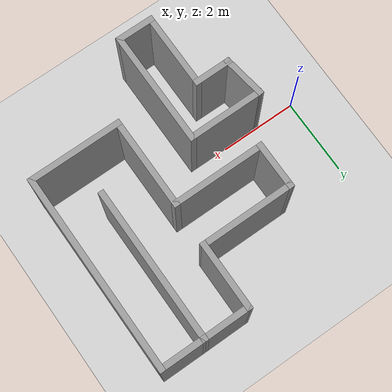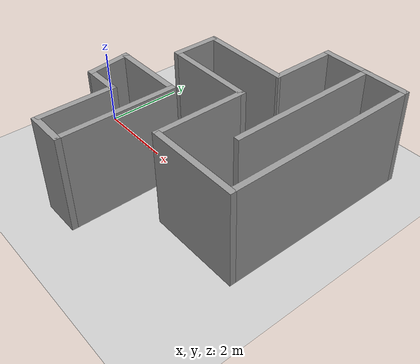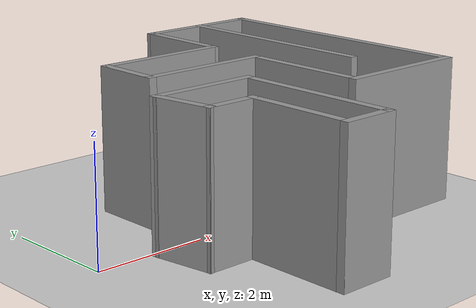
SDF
<sdf version="1.6">
 <world name="default">
  <light name="sun" type="directional">
   <pose>0 0 10 0 -0 0</pose>
   <diffuse>0.8 0.8 0.8 1</diffuse>
   <specular>0.1 0.1 0.1 1</specular>
   <attenuation>
    <range>1000</range>
    <constant>0.9</constant>
    <linear>0.01</linear>
    <quadratic>0.001</quadratic>
   </attenuation>
   <direction>-0.5 0.5 -1</direction>
  </light>
  <model name="ground_plane">
   <static>1</static>
   <link name="link">
    <collision name="collision">
     <geometry><plane><normal>0 0 1</normal><size>100 100</size></plane></geometry>
     <surface><friction><ode><mu>100</mu><mu2>50</mu2></ode></friction></surface>
    </collision>
    <visual name="visual">
     <cast_shadows>0</cast_shadows>
     <geometry><plane><normal>0 0 1</normal><size>100 100</size></plane></geometry>
     <material>
      <script><uri>file://media/materials/scripts/gazebo.material</uri><name>Gazebo/Grey</name></script>
     </material>
    </visual>
   </link>
  </model>
  <gravity>0 0 -9.8</gravity>
  <magnetic_field>6e-06 2.3e-05 -4.2e-05</magnetic_field>
  <atmosphere type="adiabatic"/>
  <physics name="default_physics" default="0" type="ode">
   <max_step_size>0.001</max_step_size>
   <real_time_factor>1</real_time_factor>
   <real_time_update_rate>1000</real_time_update_rate>
  </physics>
  <scene><ambient>0.4 0.4 0.4 1</ambient><background>0.7 0.7 0.7 1</background><shadows>1</shadows></scene>
  <spherical_coordinates>
   <surface_model>EARTH_WGS84</surface_model>
   <latitude_deg>0</latitude_deg>
   <longitude_deg>0</longitude_deg>
   <elevation>0</elevation>
   <heading_deg>0</heading_deg>
  </spherical_coordinates>
  <model name="One">
   <pose>2.00259 -1.50895 0 0 -0 0</pose>
   <link name="Wall_12">
    <collision name="Wall_12_Collision">
     <geometry><box><size>2 0.15 2.5</size></box></geometry>
     <pose>0 0 1.25 0 -0 0</pose>
    </collision>
    <visual name="Wall_12_Visual">
     <pose>0 0 1.25 0 -0 0</pose>
     <geometry><box><size>2 0.15 2.5</size></box></geometry>
     <material>
      <script><uri>file://media/materials/scripts/gazebo.material</uri><name>Gazebo/Grey</name></script>
      <ambient>1 1 1 1</ambient>
     </material>
    </visual>
    <pose>0.005148 1.41985 0 0 -0 0</pose>
   </link>
   <link name="Wall_13">
    <collision name="Wall_13_Collision">
     <geometry><box><size>3 0.15 2.5</size></box></geometry>
     <pose>0 0 1.25 0 -0 0</pose>
    </collision>
    <visual name="Wall_13_Visual">
     <pose>0 0 1.25 0 -0 0</pose>
     <geometry><box><size>3 0.15 2.5</size></box></geometry>
     <material>
      <script><uri>file://media/materials/scripts/gazebo.material</uri><name>Gazebo/Grey</name></script>
      <ambient>1 1 1 1</ambient>
     </material>
    </visual>
    <pose>0.930148 -0.005148 0 0 0 -1.5708</pose>
   </link>
   <link name="Wall_14">
    <collision name="Wall_14_Collision">
     <geometry><box><size>1 0.15 2.5</size></box></geometry>
     <pose>0 0 1.25 0 -0 0</pose>
    </collision>
    <visual name="Wall_14_Visual">
     <pose>0 0 1.25 0 -0 0</pose>
     <geometry><box><size>1 0.15 2.5</size></box></geometry>
     <material>
      <script><uri>file://media/materials/scripts/gazebo.material</uri><name>Gazebo/Grey</name></script>
      <ambient>1 1 1 1</ambient>
     </material>
    </visual>
    <pose>0.505148 -1.43015 0 0 -0 3.14159</pose>
   </link>
   <link name="Wall_15">
    <collision name="Wall_15_Collision">
     <geometry><box><size>2 0.15 2.5</size></box></geometry>
     <pose>0 0 1.25 0 -0 0</pose>
    </collision>
    <visual name="Wall_15_Visual">
     <pose>0 0 1.25 0 -0 0</pose>
     <geometry><box><size>2 0.15 2.5</size></box></geometry>
     <material>
      <script><uri>file://media/materials/scripts/gazebo.material</uri><name>Gazebo/Grey</name></script>
      <ambient>1 1 1 1</ambient>
     </material>
    </visual>
    <pose>0.080148 -0.505148 0 0 -0 1.5708</pose>
   </link>
   <link name="Wall_16">
    <collision name="Wall_16_Collision">
     <geometry><box><size>1 0.15 2.5</size></box></geometry>
     <pose>0 0 1.25 0 -0 0</pose>
    </collision>
    <visual name="Wall_16_Visual">
     <pose>0 0 1.25 0 -0 0</pose>
     <geometry><box><size>1 0.15 2.5</size></box></geometry>
     <material>
      <script><uri>file://media/materials/scripts/gazebo.material</uri><name>Gazebo/Grey</name></script>
      <ambient>1 1 1 1</ambient>
     </material>
    </visual>
    <pose>-0.344852 0.419852 0 0 -0 3.14159</pose>
   </link>
   <link name="Wall_17">
    <collision name="Wall_17_Collision">
     <geometry><box><size>1.16119 0.15 2.5</size></box></geometry>
     <pose>0 0 1.25 0 -0 0</pose>
    </collision>
    <visual name="Wall_17_Visual">
     <pose>0 0 1.25 0 -0 0</pose>
     <geometry><box><size>1.16119 0.15 2.5</size></box></geometry>
     <material>
      <script><uri>file://media/materials/scripts/gazebo.material</uri><name>Gazebo/Grey</name></script>
      <ambient>1 1 1 1</ambient>
     </material>
    </visual>
    <pose>-0.844852 0.919852 0 0 -0 1.71969</pose>
   </link>
   <static>1</static>
  </model>
  <model name="bug1_test">
   <pose>4.08928 1.19591 0 0 -0 0</pose>
   <link name="Wall_0">
    <collision name="Wall_0_Collision">
     <geometry><box><size>1.30678 0.15 2.5</size></box></geometry>
     <pose>0 0 1.25 0 -0 0</pose>
    </collision>
    <visual name="Wall_0_Visual">
     <pose>0 0 1.25 0 -0 0</pose>
     <geometry><box><size>1.30678 0.15 2.5</size></box></geometry>
     <material>
      <script><uri>file://media/materials/scripts/gazebo.material</uri><name>Gazebo/Grey</name></script>
      <ambient>1 1 1 1</ambient>
     </material>
    </visual>
    <pose>0.60665 2.49755 0 0 -0 0.003514</pose>
   </link>
   <link name="Wall_1">
    <collision name="Wall_1_Collision">
     <geometry><box><size>4 0.15 2.5</size></box></geometry>
     <pose>0 0 1.25 0 -0 0</pose>
    </collision>
    <visual name="Wall_1_Visual">
     <pose>0 0 1.25 0 -0 0</pose>
     <geometry><box><size>4 0.15 2.5</size></box></geometry>
     <material>
      <script><uri>file://media/materials/scripts/gazebo.material</uri><name>Gazebo/Grey</name></script>
      <ambient>1 1 1 1</ambient>
     </material>
    </visual>
    <pose>1.18498 0.574585 0 0 0 -1.5708</pose>
   </link>
   <link name="Wall_10">
    <collision name="Wall_10_Collision">
     <geometry><box><size>1.79594 0.15 2.5</size></box></geometry>
     <pose>0 0 1.25 0 -0 0</pose>
    </collision>
    <visual name="Wall_10_Visual">
     <pose>0 0 1.25 0 -0 0</pose>
     <geometry><box><size>1.79594 0.15 2.5</size></box></geometry>
     <material>
      <script><uri>file://media/materials/scripts/gazebo.material</uri><name>Gazebo/Grey</name></script>
      <ambient>1 1 1 1</ambient>
     </material>
    </visual>
    <pose>0.025693 1.67255 0 0 -0 1.56761</pose>
   </link>
   <link name="Wall_3">
    <collision name="Wall_3_Collision">
     <geometry><box><size>1.25024 0.15 2.5</size></box></geometry>
     <pose>0 0 1.25 0 -0 0</pose>
    </collision>
    <visual name="Wall_3_Visual">
     <pose>0 0 1.25 0 -0 0</pose>
     <geometry><box><size>1.25024 0.15 2.5</size></box></geometry>
     <material>
      <script><uri>file://media/materials/scripts/gazebo.material</uri><name>Gazebo/Grey</name></script>
      <ambient>1 1 1 1</ambient>
     </material>
    </visual>
    <pose>1.73498 2.49959 0 0 -0 0</pose>
   </link>
   <link name="Wall_4">
    <collision name="Wall_4_Collision">
     <geometry><box><size>5.14943 0.15 2.5</size></box></geometry>
     <pose>0 0 1.25 0 -0 0</pose>
    </collision>
    <visual name="Wall_4_Visual">
     <pose>0 0 1.25 0 -0 0</pose>
     <geometry><box><size>5.14943 0.15 2.5</size></box></geometry>
     <material>
      <script><uri>file://media/materials/scripts/gazebo.material</uri><name>Gazebo/Grey</name></script>
      <ambient>1 1 1 1</ambient>
     </material>
    </visual>
    <pose>2.28498 -0.000131 0 0 0 -1.5708</pose>
   </link>
   <link name="Wall_5">
    <collision name="Wall_5_Collision">
     <geometry><box><size>2.43505 0.15 2.5</size></box></geometry>
     <pose>0 0 1.25 0 -0 0</pose>
    </collision>
    <visual name="Wall_5_Visual">
     <pose>0 0 1.25 0 -0 0</pose>
     <geometry><box><size>2.43505 0.15 2.5</size></box></geometry>
     <material>
      <script><uri>file://media/materials/scripts/gazebo.material</uri><name>Gazebo/Grey</name></script>
      <ambient>1 1 1 1</ambient>
     </material>
    </visual>
    <pose>1.14246 -2.49985 0 0 -0 3.14159</pose>
   </link>
   <link name="Wall_6">
    <collision name="Wall_6_Collision">
     <geometry><box><size>2.39943 0.15 2.5</size></box></geometry>
     <pose>0 0 1.25 0 -0 0</pose>
    </collision>
    <visual name="Wall_6_Visual">
     <pose>0 0 1.25 0 -0 0</pose>
     <geometry><box><size>2.39943 0.15 2.5</size></box></geometry>
     <material>
      <script><uri>file://media/materials/scripts/gazebo.material</uri><name>Gazebo/Grey</name></script>
      <ambient>1 1 1 1</ambient>
     </material>
    </visual>
    <pose>-6.1e-05 -1.37513 0 0 -0 1.5708</pose>
   </link>
   <link name="Wall_7">
    <collision name="Wall_7_Collision">
     <geometry><box><size>2.43505 0.15 2.5</size></box></geometry>
     <pose>0 0 1.25 0 -0 0</pose>
    </collision>
    <visual name="Wall_7_Visual">
     <pose>0 0 1.25 0 -0 0</pose>
     <geometry><box><size>2.43505 0.15 2.5</size></box></geometry>
     <material>
      <script><uri>file://media/materials/scripts/gazebo.material</uri><name>Gazebo/Grey</name></script>
      <ambient>1 1 1 1</ambient>
     </material>
    </visual>
    <pose>-1.14258 -0.250415 0 0 -0 3.14159</pose>
   </link>
   <link name="Wall_8">
    <collision name="Wall_8_Collision">
     <geometry><box><size>1.25 0.15 2.5</size></box></geometry>
     <pose>0 0 1.25 0 -0 0</pose>
    </collision>
    <visual name="Wall_8_Visual">
     <pose>0 0 1.25 0 -0 0</pose>
     <geometry><box><size>1.25 0.15 2.5</size></box></geometry>
     <material>
      <script><uri>file://media/materials/scripts/gazebo.material</uri><name>Gazebo/Grey</name></script>
      <ambient>1 1 1 1</ambient>
     </material>
    </visual>
    <pose>-2.28511 0.299585 0 0 -0 1.5708</pose>
   </link>
   <link name="Wall_9">
    <collision name="Wall_9_Collision">
     <geometry><box><size>2.45818 0.15 2.5</size></box></geometry>
     <pose>0 0 1.25 0 -0 0</pose>
    </collision>
    <visual name="Wall_9_Visual">
     <pose>0 0 1.25 0 -0 0</pose>
     <geometry><box><size>2.45818 0.15 2.5</size></box></geometry>
     <material>
      <script><uri>file://media/materials/scripts/gazebo.material</uri><name>Gazebo/Grey</name></script>
      <ambient>1 1 1 1</ambient>
     </material>
    </visual>
    <pose>-1.13102 0.849585 0 0 -0 0</pose>
   </link>
   <static>1</static>
  </model>
 </world>
</sdf>
